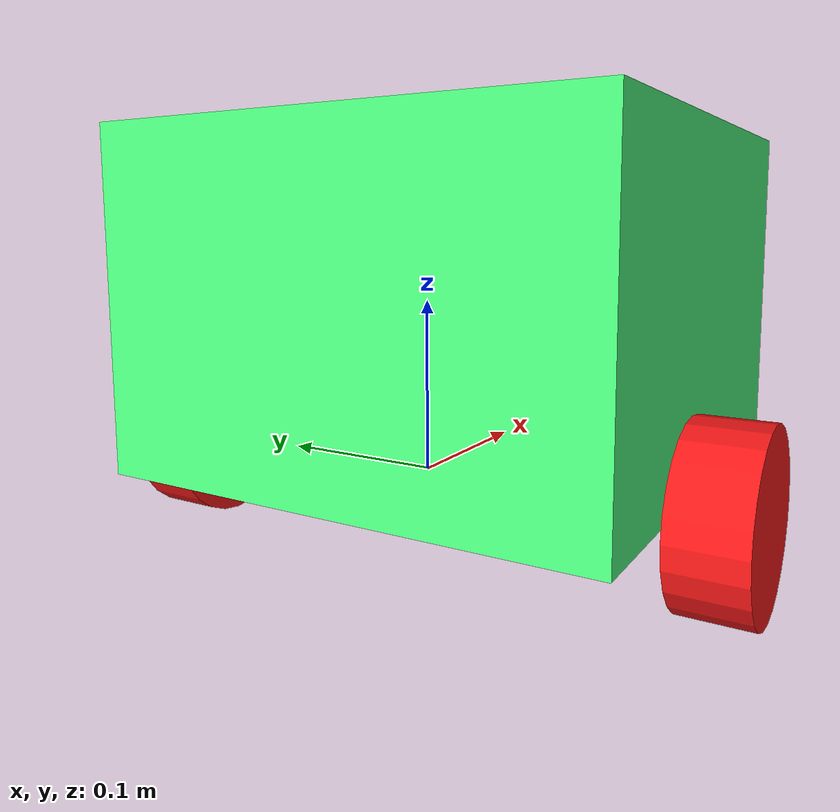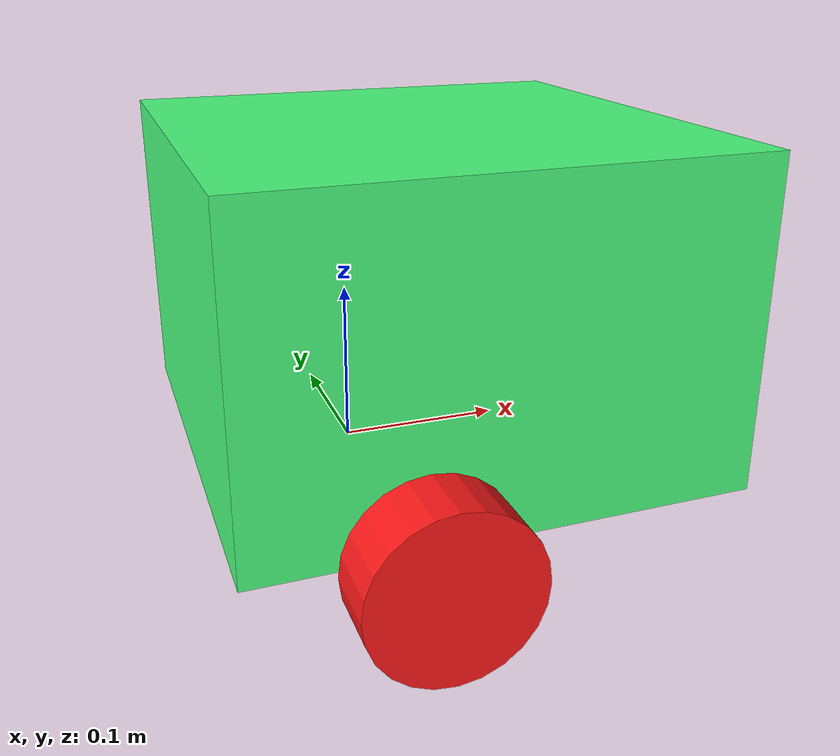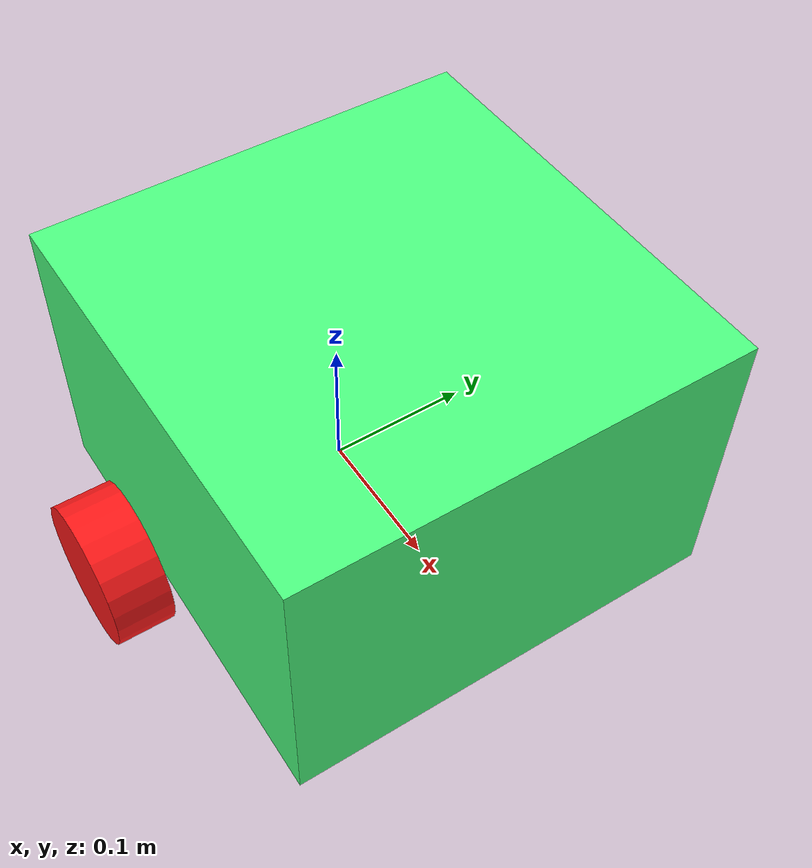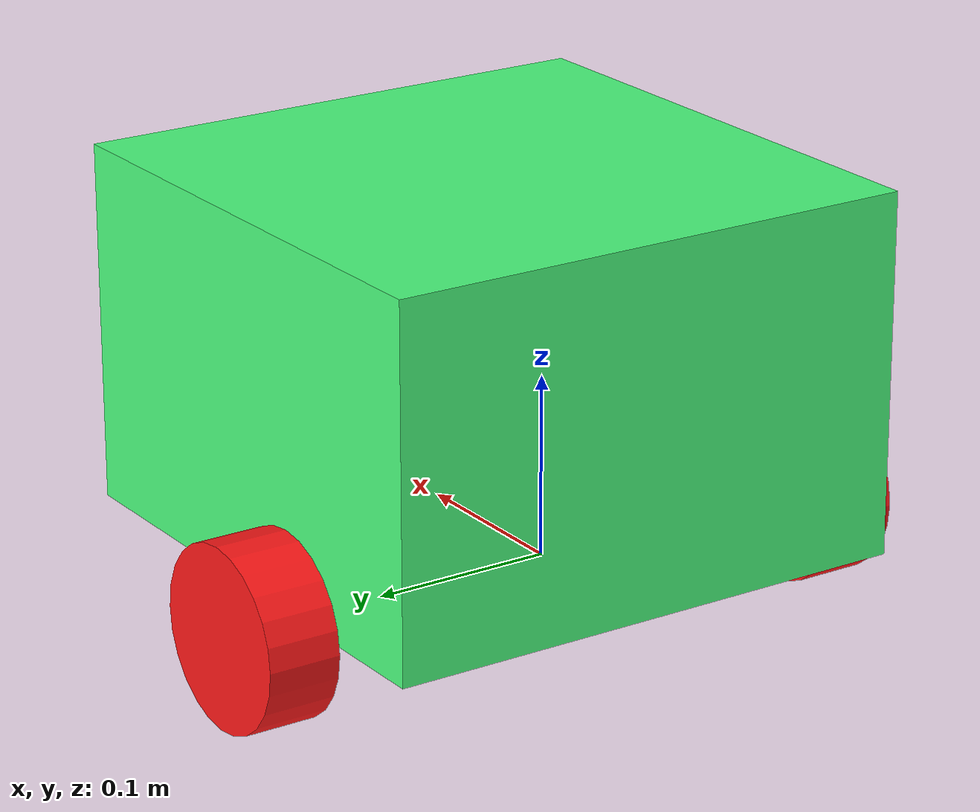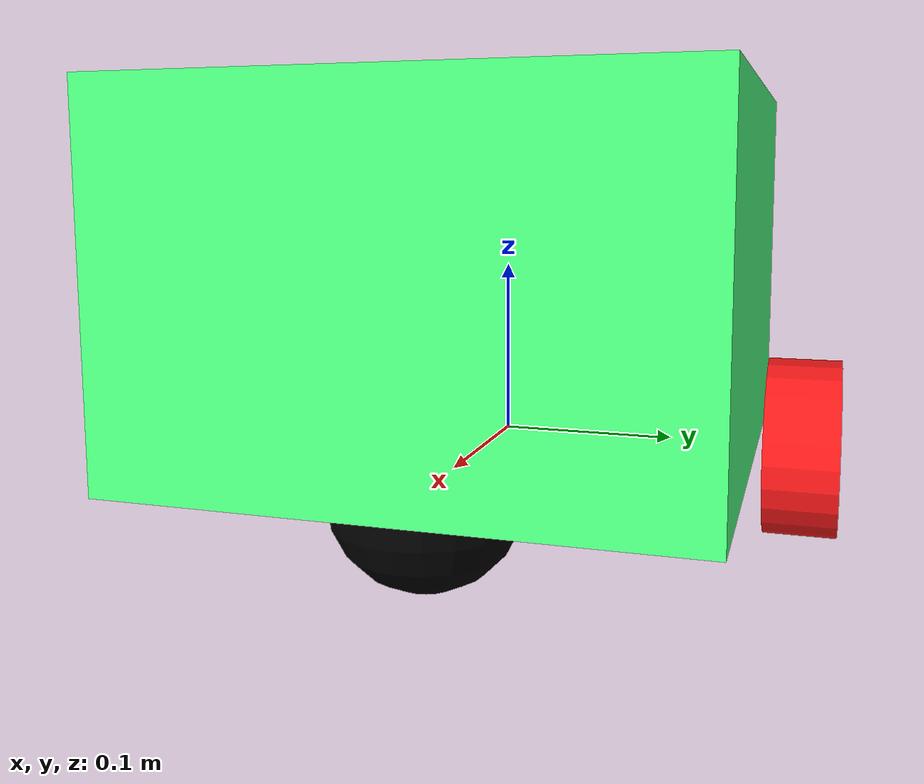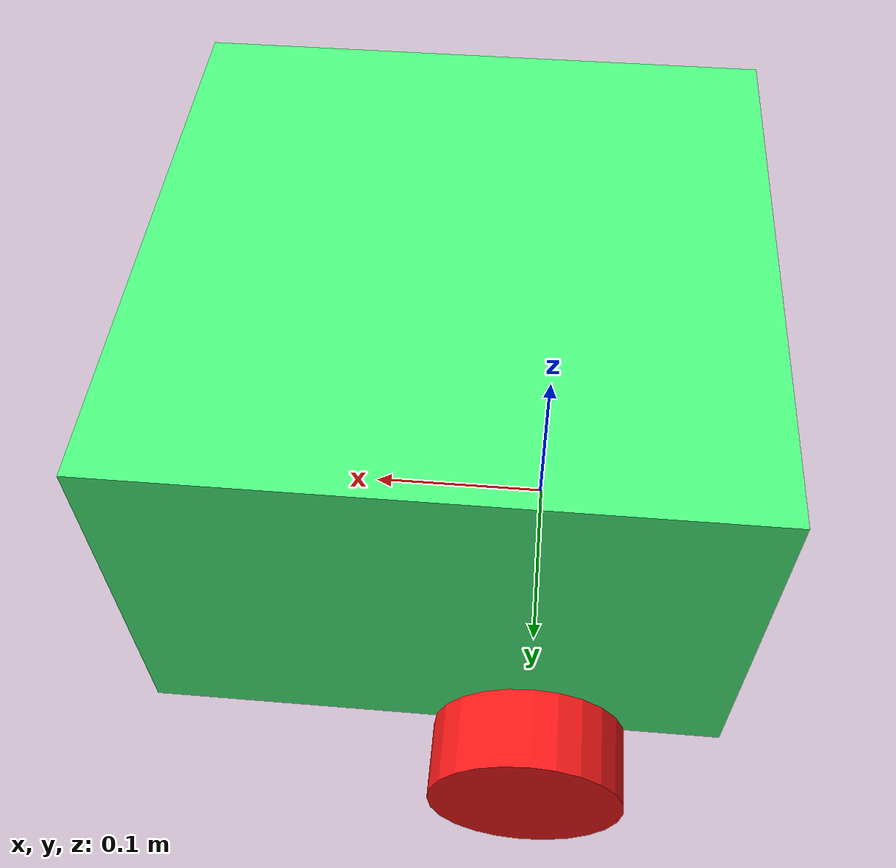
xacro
<?xml version="1.0"?>
<robot xmlns:xacro="http://www.ros.org/wiki/xacro" >

   <xacro:include filename="inertial_macros.xacro"/>
    <material name = "lime">
        <color rgba = "0.3 1 0.5 1" />
    </material>
    <material name = "black">
        <color rgba = "0 0 0 1" />
    </material>
    <material name = "blue">
        <color rgba = "0.1 0.1 1 1" />
    </material>
    <material name = "red">
        <color rgba = "1 0.1 0.1 1" />
    </material>

    <!-- BASE LINK -->

    <link name="base_link">

    </link>

    <!-- BASE_FOOTPRINT LINK -->

    <joint name="base_footprint_joint" type="fixed">
        <parent link="base_link"/>
        <child link="base_footprint"/>
        <origin xyz="0 0 0" rpy="0 0 0"/>
    </joint>

    <link name="base_footprint">
    </link>

    <!-- CHASIS LINK -->

    <joint name="chasis_joint" type="fixed">
        <parent link="base_link"/>
        <child link="chasis"/>
        <origin xyz="-0.1 0 0"/>
    </joint>

    <link name="chasis">
        <visual>
            <origin xyz="0.15 0 0.1"/>
            <geometry>
                <!-- size is in metres  -->
                <box size="0.3 0.3 0.2"/>
            </geometry>
            <material name="lime"/>
        </visual>

        <collision>
            <origin xyz="0.15 0 0.1"/>
            <geometry>
                <!-- size is in metres  -->
                <box size="0.3 0.3 0.2"/>
            </geometry>
        </collision>
        <xacro:inertial_box mass="0.5" x="0.3" y="0.3" z="0.2">
            <origin xyz="0.15 0 0.1" rpy="0 0 0"/>
        </xacro:inertial_box>

    </link>
    <gazebo reference="chasis">
        <material>Gazebo/Green</material>
    </gazebo>

    <!-- LEFT WHEEL LINK -->

    <joint name="left_wheel_joint" type="continuous">
        <parent link="base_link"/>
        <child link="left_wheel"/>
        <origin xyz="0 0.175 0" rpy ="-${pi/2} 0 0"/>
        <axis xyz="0 0 1"/>
    </joint>

    <link name="left_wheel">
        <visual>
            <geometry>
                <cylinder radius="0.05" length="0.04"/>
            </geometry>
            <material name="red"/>
        </visual>

        <collision>
            <geometry>
                <sphere radius="0.05"/>
            </geometry>
        </collision>
        <xacro:inertial_cylinder mass="0.01" length="0.04" radius="0.05">
            <origin xyz="0 0 0" rpy="0 0 0"/>
        </xacro:inertial_cylinder>

    </link>
    <gazebo reference="left_wheel">
        <material>Gazebo/Red</material>
    </gazebo>

    <!-- RIGHT WHEEL LINK -->

    <joint name="right_wheel_joint" type="continuous">
        <parent link="base_link"/>
        <child link="right_wheel"/>
        <origin xyz="0 -0.175 0" rpy ="${pi/2} 0 0"/>
        <axis xyz="0 0 -1"/>
    </joint>

    <link name="right_wheel">
        <visual>
            <geometry>
                <cylinder radius="0.05" length="0.04"/>
            </geometry>
            <material name="red"/>
        </visual>

        <collision>
            <geometry>
                <sphere radius="0.05"/>
            </geometry>
        </collision>
        <xacro:inertial_cylinder mass="0.01" length="0.04" radius="0.05">
            <origin xyz="0 0 0" rpy="0 0 0"/>
        </xacro:inertial_cylinder>
    </link>
    <gazebo reference="right_wheel">
        <material>Gazebo/Red</material>
    </gazebo>

    <!-- CASTER WHEEL LINK -->

    <joint name="caster_wheel_joint" type="fixed">
        <parent link="chasis"/>
        <child link="caster_wheel"/>
        <origin xyz="0.24 0 0"/>
    </joint>

    <link name="caster_wheel">
        <visual>
            <geometry>
                <sphere radius="0.05"/>
            </geometry>
            <material name="black"/>
        </visual>

        <collision>
            <geometry>
                <sphere radius="0.05"/>
            </geometry>
        </collision>
        <xacro:inertial_sphere mass="0.1" radius="0.05">
            <origin xyz="0 0 0" rpy="0 0 0"/>
        </xacro:inertial_sphere>
    </link>

    <gazebo reference="caster_wheel">
        <material>Gazebo/Black</material>
        <mu1 value="0.001"/>
        <mu2 value="0.001"/>
    </gazebo>

</robot>
